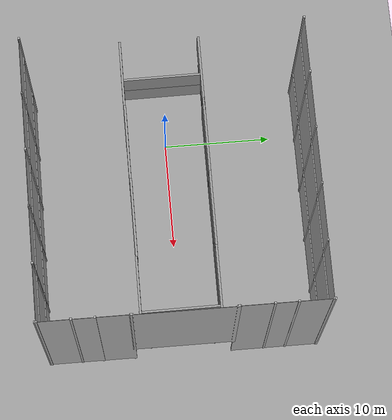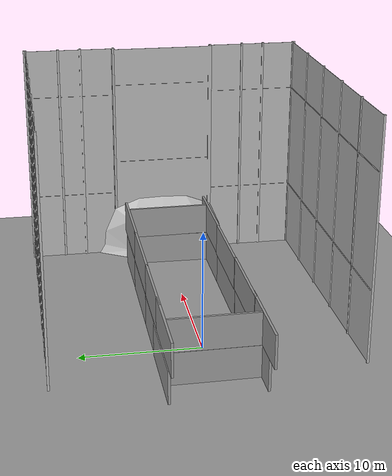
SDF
<sdf version="1.6">
 <world name="default">
  <light name="sun" type="directional">
   <pose>0 0 10 0 -0 0</pose>
   <diffuse>0.8 0.8 0.8 1</diffuse>
   <specular>0.2 0.2 0.2 1</specular>
   <attenuation>
    <range>1000</range>
    <constant>0.9</constant>
    <linear>0.01</linear>
    <quadratic>0.001</quadratic>
   </attenuation>
   <direction>-0.5 0.1 -0.9</direction>
  </light>
  <model name="ground_plane">
   <static>1</static>
   <link name="link">
    <collision name="collision">
     <geometry><plane><normal>0 0 1</normal><size>100 100</size></plane></geometry>
     <surface>
      <contact><collide_bitmask>65535</collide_bitmask></contact>
      <friction><ode><mu>100</mu><mu2>50</mu2></ode></friction>
     </surface>
    </collision>
    <visual name="visual">
     <cast_shadows>0</cast_shadows>
     <geometry><plane><normal>0 0 1</normal><size>100 100</size></plane></geometry>
     <material>
      <script><uri>file://media/materials/scripts/gazebo.material</uri><name>Gazebo/Grey</name></script>
     </material>
    </visual>
   </link>
  </model>
  <gravity>0 0 -9.8</gravity>
  <magnetic_field>6e-06 2.3e-05 -4.2e-05</magnetic_field>
  <atmosphere type="adiabatic"/>
  <physics name="default_physics" default="0" type="ode">
   <max_step_size>0.001</max_step_size>
   <real_time_factor>1</real_time_factor>
   <real_time_update_rate>1000</real_time_update_rate>
  </physics>
  <scene><ambient>0.4 0.4 0.4 1</ambient><background>0.7 0.7 0.7 1</background><shadows>1</shadows></scene>
  <audio><device>default</device></audio>
  <spherical_coordinates>
   <surface_model>EARTH_WGS84</surface_model>
   <latitude_deg>0</latitude_deg>
   <longitude_deg>0</longitude_deg>
   <elevation>0</elevation>
   <heading_deg>0</heading_deg>
  </spherical_coordinates>
  <model name="grey_wall">
   <static>1</static>
   <link name="link">
    <pose>0 0 1.4 0 -0 0</pose>
    <collision name="collision"><geometry><box><size>7.5 0.2 2.8</size></box></geometry></collision>
    <visual name="visual">
     <cast_shadows>0</cast_shadows>
     <geometry><box><size>7.5 0.2 2.8</size></box></geometry>
     <material>
      <script>
       <uri>model://grey_wall/materials/scripts</uri>
       <uri>model://grey_wall/materials/textures</uri>
       <name>vrc/grey_wall</name>
      </script>
     </material>
    </visual>
   </link>
   <pose>1.01817 -3.63173 2.81516 0 -0 0</pose>
  </model>
  <model name="grey_wall_0">
   <static>1</static>
   <link name="link">
    <pose>0 0 1.4 0 -0 0</pose>
    <collision name="collision"><geometry><box><size>7.5 0.2 2.8</size></box></geometry></collision>
    <visual name="visual">
     <cast_shadows>0</cast_shadows>
     <geometry><box><size>7.5 0.2 2.8</size></box></geometry>
     <material>
      <script>
       <uri>model://grey_wall/materials/scripts</uri>
       <uri>model://grey_wall/materials/textures</uri>
       <name>vrc/grey_wall</name>
      </script>
     </material>
    </visual>
   </link>
   <pose>0.863619 3.87178 0 0 -0 0</pose>
  </model>
  <model name="grey_wall_1">
   <static>1</static>
   <link name="link">
    <pose>0 0 1.4 0 -0 0</pose>
    <collision name="collision"><geometry><box><size>7.5 0.2 2.8</size></box></geometry></collision>
    <visual name="visual">
     <cast_shadows>0</cast_shadows>
     <geometry><box><size>7.5 0.2 2.8</size></box></geometry>
     <material>
      <script>
       <uri>model://grey_wall/materials/scripts</uri>
       <uri>model://grey_wall/materials/textures</uri>
       <name>vrc/grey_wall</name>
      </script>
     </material>
    </visual>
   </link>
   <pose>-5.28087 0.121943 0 0 0 -1.56381</pose>
  </model>
  <model name="grey_wall_2">
   <static>1</static>
   <link name="link">
    <pose>0 0 1.4 0 -0 0</pose>
    <collision name="collision"><geometry><box><size>7.5 0.2 2.8</size></box></geometry></collision>
    <visual name="visual">
     <cast_shadows>0</cast_shadows>
     <geometry><box><size>7.5 0.2 2.8</size></box></geometry>
     <material>
      <script>
       <uri>model://grey_wall/materials/scripts</uri>
       <uri>model://grey_wall/materials/textures</uri>
       <name>vrc/grey_wall</name>
      </script>
     </material>
    </visual>
   </link>
   <pose>8.12594 -3.64959 0 0 -0 0</pose>
  </model>
  <model name="grey_wall_3">
   <static>1</static>
   <link name="link">
    <pose>0 0 1.4 0 -0 0</pose>
    <collision name="collision"><geometry><box><size>7.5 0.2 2.8</size></box></geometry></collision>
    <visual name="visual">
     <cast_shadows>0</cast_shadows>
     <geometry><box><size>7.5 0.2 2.8</size></box></geometry>
     <material>
      <script>
       <uri>model://grey_wall/materials/scripts</uri>
       <uri>model://grey_wall/materials/textures</uri>
       <name>vrc/grey_wall</name>
      </script>
     </material>
    </visual>
   </link>
   <pose>8.17557 3.86775 0 0 -0 0</pose>
  </model>
  <model name="grey_wall_4">
   <static>1</static>
   <link name="link">
    <pose>0 0 1.4 0 -0 0</pose>
    <collision name="collision"><geometry><box><size>7.5 0.2 2.8</size></box></geometry></collision>
    <visual name="visual">
     <cast_shadows>0</cast_shadows>
     <geometry><box><size>7.5 0.2 2.8</size></box></geometry>
     <material>
      <script>
       <uri>model://grey_wall/materials/scripts</uri>
       <uri>model://grey_wall/materials/textures</uri>
       <name>vrc/grey_wall</name>
      </script>
     </material>
    </visual>
   </link>
   <pose>13.3251 -3.65072 0 0 -0 0</pose>
  </model>
  <model name="grey_wall_5">
   <static>1</static>
   <link name="link">
    <pose>0 0 1.4 0 -0 0</pose>
    <collision name="collision"><geometry><box><size>7.5 0.2 2.8</size></box></geometry></collision>
    <visual name="visual">
     <cast_shadows>0</cast_shadows>
     <geometry><box><size>7.5 0.2 2.8</size></box></geometry>
     <material>
      <script>
       <uri>model://grey_wall/materials/scripts</uri>
       <uri>model://grey_wall/materials/textures</uri>
       <name>vrc/grey_wall</name>
      </script>
     </material>
    </visual>
   </link>
   <pose>14.1542 3.85196 0 0 -0 0</pose>
  </model>
  <model name="grey_wall_6">
   <static>1</static>
   <link name="link">
    <pose>0 0 1.4 0 -0 0</pose>
    <collision name="collision"><geometry><box><size>7.5 0.2 2.8</size></box></geometry></collision>
    <visual name="visual">
     <cast_shadows>0</cast_shadows>
     <geometry><box><size>7.5 0.2 2.8</size></box></geometry>
     <material>
      <script>
       <uri>model://grey_wall/materials/scripts</uri>
       <uri>model://grey_wall/materials/textures</uri>
       <name>vrc/grey_wall</name>
      </script>
     </material>
    </visual>
   </link>
   <pose>17.3052 0.09085 0 0 0 -1.59084</pose>
  </model>
  <model name="grey_wall_7">
   <static>1</static>
   <link name="link">
    <pose>0 0 1.4 0 -0 0</pose>
    <collision name="collision"><geometry><box><size>7.5 0.2 2.8</size></box></geometry></collision>
    <visual name="visual">
     <cast_shadows>0</cast_shadows>
     <geometry><box><size>7.5 0.2 2.8</size></box></geometry>
     <material>
      <script>
       <uri>model://grey_wall/materials/scripts</uri>
       <uri>model://grey_wall/materials/textures</uri>
       <name>vrc/grey_wall</name>
      </script>
     </material>
    </visual>
   </link>
   <pose>0.932106 -3.66577 0 0 -0 0</pose>
  </model>
  <model name="grey_wall_clone">
   <static>1</static>
   <link name="link">
    <pose>0 0 1.4 0 -0 0</pose>
    <collision name="collision"><geometry><box><size>7.5 0.2 2.8</size></box></geometry></collision>
    <visual name="visual">
     <cast_shadows>0</cast_shadows>
     <geometry><box><size>7.5 0.2 2.8</size></box></geometry>
     <material>
      <script>
       <uri>model://grey_wall/materials/scripts</uri>
       <uri>model://grey_wall/materials/textures</uri>
       <name>vrc/grey_wall</name>
      </script>
     </material>
    </visual>
   </link>
   <pose>8.24846 -3.5942 2.81516 0 -0 0</pose>
  </model>
  <model name="grey_wall_clone_clone">
   <static>1</static>
   <link name="link">
    <pose>0 0 1.4 0 -0 0</pose>
    <collision name="collision"><geometry><box><size>7.5 0.2 2.8</size></box></geometry></collision>
    <visual name="visual">
     <cast_shadows>0</cast_shadows>
     <geometry><box><size>7.5 0.2 2.8</size></box></geometry>
     <material>
      <script>
       <uri>model://grey_wall/materials/scripts</uri>
       <uri>model://grey_wall/materials/textures</uri>
       <name>vrc/grey_wall</name>
      </script>
     </material>
    </visual>
   </link>
   <pose>15.7014 -3.641 2.81516 0 -0 0</pose>
  </model>
  <model name="grey_wall_1_clone">
   <static>1</static>
   <link name="link">
    <pose>0 0 1.4 0 -0 0</pose>
    <collision name="collision"><geometry><box><size>7.5 0.2 2.8</size></box></geometry></collision>
    <visual name="visual">
     <cast_shadows>0</cast_shadows>
     <geometry><box><size>7.5 0.2 2.8</size></box></geometry>
     <material>
      <script>
       <uri>model://grey_wall/materials/scripts</uri>
       <uri>model://grey_wall/materials/textures</uri>
       <name>vrc/grey_wall</name>
      </script>
     </material>
    </visual>
   </link>
   <pose>-5.26746 0.127338 2.78242 0 0 -1.56381</pose>
  </model>
  <model name="grey_wall_clone_0">
   <static>1</static>
   <link name="link">
    <pose>0 0 1.4 0 -0 0</pose>
    <collision name="collision"><geometry><box><size>7.5 0.2 2.8</size></box></geometry></collision>
    <visual name="visual">
     <cast_shadows>0</cast_shadows>
     <geometry><box><size>7.5 0.2 2.8</size></box></geometry>
     <material>
      <script>
       <uri>model://grey_wall/materials/scripts</uri>
       <uri>model://grey_wall/materials/textures</uri>
       <name>vrc/grey_wall</name>
      </script>
     </material>
    </visual>
   </link>
   <pose>0.820876 3.85847 2.81516 0 -0 0</pose>
  </model>
  <model name="grey_wall_clone_1">
   <static>1</static>
   <link name="link">
    <pose>0 0 1.4 0 -0 0</pose>
    <collision name="collision"><geometry><box><size>7.5 0.2 2.8</size></box></geometry></collision>
    <visual name="visual">
     <cast_shadows>0</cast_shadows>
     <geometry><box><size>7.5 0.2 2.8</size></box></geometry>
     <material>
      <script>
       <uri>model://grey_wall/materials/scripts</uri>
       <uri>model://grey_wall/materials/textures</uri>
       <name>vrc/grey_wall</name>
      </script>
     </material>
    </visual>
   </link>
   <pose>8.06011 3.85106 2.81516 0 -0 0</pose>
  </model>
  <model name="grey_wall_clone_2">
   <static>1</static>
   <link name="link">
    <pose>0 0 1.4 0 -0 0</pose>
    <collision name="collision"><geometry><box><size>7.5 0.2 2.8</size></box></geometry></collision>
    <visual name="visual">
     <cast_shadows>0</cast_shadows>
     <geometry><box><size>7.5 0.2 2.8</size></box></geometry>
     <material>
      <script>
       <uri>model://grey_wall/materials/scripts</uri>
       <uri>model://grey_wall/materials/textures</uri>
       <name>vrc/grey_wall</name>
      </script>
     </material>
    </visual>
   </link>
   <pose>15.2353 3.83298 2.81516 0 -0 0</pose>
  </model>
  <model name="grey_wall_1_clone_clone">
   <static>1</static>
   <link name="link">
    <pose>0 0 1.4 0 -0 0</pose>
    <collision name="collision"><geometry><box><size>7.5 0.2 2.8</size></box></geometry></collision>
    <visual name="visual">
     <cast_shadows>0</cast_shadows>
     <geometry><box><size>7.5 0.2 2.8</size></box></geometry>
     <material>
      <script>
       <uri>model://grey_wall/materials/scripts</uri>
       <uri>model://grey_wall/materials/textures</uri>
       <name>vrc/grey_wall</name>
      </script>
     </material>
    </visual>
   </link>
   <pose>17.2716 -0.026044 2.78242 0 0 -1.56381</pose>
  </model>
  <model name="grey_wall_0_clone">
   <static>1</static>
   <link name="link">
    <pose>0 0 1.4 0 -0 0</pose>
    <collision name="collision"><geometry><box><size>7.5 0.2 2.8</size></box></geometry></collision>
    <visual name="visual">
     <cast_shadows>0</cast_shadows>
     <geometry><box><size>7.5 0.2 2.8</size></box></geometry>
     <material>
      <script>
       <uri>model://grey_wall/materials/scripts</uri>
       <uri>model://grey_wall/materials/textures</uri>
       <name>vrc/grey_wall</name>
      </script>
     </material>
    </visual>
   </link>
   <pose>-4.29319 3.94268 0 0 -0 0</pose>
  </model>
  <model name="grey_wall_clone_0_clone">
   <static>1</static>
   <link name="link">
    <pose>0 0 1.4 0 -0 0</pose>
    <collision name="collision"><geometry><box><size>7.5 0.2 2.8</size></box></geometry></collision>
    <visual name="visual">
     <cast_shadows>0</cast_shadows>
     <geometry><box><size>7.5 0.2 2.8</size></box></geometry>
     <material>
      <script>
       <uri>model://grey_wall/materials/scripts</uri>
       <uri>model://grey_wall/materials/textures</uri>
       <name>vrc/grey_wall</name>
      </script>
     </material>
    </visual>
   </link>
   <pose>-5.29631 3.86446 2.81516 0 -0 0</pose>
  </model>
  <model name="grey_wall_7_clone">
   <static>1</static>
   <link name="link">
    <pose>0 0 1.4 0 -0 0</pose>
    <collision name="collision"><geometry><box><size>7.5 0.2 2.8</size></box></geometry></collision>
    <visual name="visual">
     <cast_shadows>0</cast_shadows>
     <geometry><box><size>7.5 0.2 2.8</size></box></geometry>
     <material>
      <script>
       <uri>model://grey_wall/materials/scripts</uri>
       <uri>model://grey_wall/materials/textures</uri>
       <name>vrc/grey_wall</name>
      </script>
     </material>
    </visual>
   </link>
   <pose>-3.71593 -3.69178 0 0 -0 0</pose>
  </model>
  <model name="grey_wall_clone_3">
   <static>1</static>
   <link name="link">
    <pose>0 0 1.4 0 -0 0</pose>
    <collision name="collision"><geometry><box><size>7.5 0.2 2.8</size></box></geometry></collision>
    <visual name="visual">
     <cast_shadows>0</cast_shadows>
     <geometry><box><size>7.5 0.2 2.8</size></box></geometry>
     <material>
      <script>
       <uri>model://grey_wall/materials/scripts</uri>
       <uri>model://grey_wall/materials/textures</uri>
       <name>vrc/grey_wall</name>
      </script>
     </material>
    </visual>
   </link>
   <pose>-5.34574 -3.66884 2.81516 0 -0 0</pose>
  </model>
  <model name="ground_plane_0">
   <static>1</static>
   <link name="link">
    <collision name="collision">
     <geometry><plane><normal>0 0 1</normal><size>100 100</size></plane></geometry>
     <surface>
      <contact><collide_bitmask>65535</collide_bitmask></contact>
      <friction><ode><mu>100</mu><mu2>50</mu2></ode></friction>
     </surface>
    </collision>
    <visual name="visual">
     <cast_shadows>0</cast_shadows>
     <geometry><plane><normal>0 0 1</normal><size>100 100</size></plane></geometry>
     <material>
      <script><uri>file://media/materials/scripts/gazebo.material</uri><name>Gazebo/Grey</name></script>
     </material>
    </visual>
   </link>
   <pose>3.00417 10.6 0 0 -0 0</pose>
  </model>
  <model name="subt_tunnel_staging_area">
   <static>1</static>
   <link name="link">
    <collision name="collision1">
     <pose>-10 -10 20 0 -0 0</pose>
     <geometry><box><size>0.1 0.1 0.1</size></box></geometry>
    </collision>
    <collision name="collision2">
     <pose>10 10 20 0 -0 0</pose>
     <geometry><box><size>0.1 0.1 0.1</size></box></geometry>
    </collision>
    <visual name="plane_visual">
     <pose>-1.18172 0 0 0 -0 0</pose>
     <geometry><mesh><uri>model://subt_tunnel_staging_area/meshes/Asphalt_Plane.DAE</uri></mesh></geometry>
    </visual>
    <visual name="fence_right1">
     <pose>8.81828 -12.4 0 1.5707 -0 0</pose>
     <geometry>
      <mesh><uri>model://subt_tunnel_staging_area/meshes/Fence.dae</uri><scale>1 6.7 1</scale></mesh>
     </geometry>
    </visual>
    <visual name="fence_right2">
     <pose>3.81828 -12.4 0 1.5707 -0 0</pose>
     <geometry>
      <mesh><uri>model://subt_tunnel_staging_area/meshes/Fence.dae</uri><scale>1 6.7 1</scale></mesh>
     </geometry>
    </visual>
    <visual name="fence_right3">
     <pose>-1.18172 -12.4 0 1.5707 -0 0</pose>
     <geometry>
      <mesh><uri>model://subt_tunnel_staging_area/meshes/Fence.dae</uri><scale>1 6.7 1</scale></mesh>
     </geometry>
    </visual>
    <visual name="fence_right4">
     <pose>-6.18172 -12.4 0 1.5707 -0 0</pose>
     <geometry>
      <mesh><uri>model://subt_tunnel_staging_area/meshes/Fence.dae</uri><scale>1 6.7 1</scale></mesh>
     </geometry>
    </visual>
    <visual name="fence_right5">
     <pose>-11.1817 -12.4 0 1.5707 -0 0</pose>
     <geometry>
      <mesh><uri>model://subt_tunnel_staging_area/meshes/Fence.dae</uri><scale>1 6.7 1</scale></mesh>
     </geometry>
    </visual>
    <visual name="fence_left1">
     <pose>8.81828 12.4 0 1.5707 -0 3.1415</pose>
     <geometry>
      <mesh><uri>model://subt_tunnel_staging_area/meshes/Fence.dae</uri><scale>1 6.7 1</scale></mesh>
     </geometry>
    </visual>
    <visual name="fence_left2">
     <pose>3.81828 12.4 0 1.5707 -0 3.1415</pose>
     <geometry>
      <mesh><uri>model://subt_tunnel_staging_area/meshes/Fence.dae</uri><scale>1 6.7 1</scale></mesh>
     </geometry>
    </visual>
    <visual name="fence_left3">
     <pose>-1.18172 12.4 0 1.5707 -0 3.1415</pose>
     <geometry>
      <mesh><uri>model://subt_tunnel_staging_area/meshes/Fence.dae</uri><scale>1 6.7 1</scale></mesh>
     </geometry>
    </visual>
    <visual name="fence_left4">
     <pose>-6.18172 12.4 0 1.5707 -0 3.1415</pose>
     <geometry>
      <mesh><uri>model://subt_tunnel_staging_area/meshes/Fence.dae</uri><scale>1 6.7 1</scale></mesh>
     </geometry>
    </visual>
    <visual name="fence_left5">
     <pose>-11.1817 12.4 0 1.5707 -0 3.1415</pose>
     <geometry>
      <mesh><uri>model://subt_tunnel_staging_area/meshes/Fence.dae</uri><scale>1 6.7 1</scale></mesh>
     </geometry>
    </visual>
    <visual name="fence_front_left1">
     <pose>11.3182 10 0 1.5707 0 1.5707</pose>
     <geometry>
      <mesh><uri>model://subt_tunnel_staging_area/meshes/Fence.dae</uri><scale>1 6.7 1</scale></mesh>
     </geometry>
    </visual>
    <visual name="fence_front_left2">
     <pose>11.3182 7 0 1.5707 0 1.5707</pose>
     <geometry>
      <mesh><uri>model://subt_tunnel_staging_area/meshes/Fence.dae</uri><scale>1 6.7 1</scale></mesh>
     </geometry>
    </visual>
    <visual name="fence_front_right1">
     <pose>11.3182 -10 0 1.5707 0 1.5707</pose>
     <geometry>
      <mesh><uri>model://subt_tunnel_staging_area/meshes/Fence.dae</uri><scale>1 6.7 1</scale></mesh>
     </geometry>
    </visual>
    <visual name="fence_front_right2">
     <pose>11.3182 -7 0 1.5707 0 1.5707</pose>
     <geometry>
      <mesh><uri>model://subt_tunnel_staging_area/meshes/Fence.dae</uri><scale>1 6.7 1</scale></mesh>
     </geometry>
    </visual>
    <visual name="fence_front_top">
     <pose>11.3182 0 4.5 1.5707 0 1.5707</pose>
     <geometry>
      <mesh><uri>model://subt_tunnel_staging_area/meshes/Fence.dae</uri><scale>1.8 5.17 1</scale></mesh>
     </geometry>
    </visual>
    <collision name="ceiling_collision">
     <pose>-1.18172 0 20.5 0 -0 0</pose>
     <geometry><box><size>25 25 1</size></box></geometry>
    </collision>
    <collision name="right_collision">
     <pose>-1.18172 -13 10.5 0 -0 0</pose>
     <geometry><box><size>25 1 21</size></box></geometry>
    </collision>
    <collision name="left_collision">
     <pose>-1.18172 13 10.5 0 -0 0</pose>
     <geometry><box><size>25 1 21</size></box></geometry>
    </collision>
    <collision name="rear_collision">
     <pose>-13.6182 0 10.5 0 -0 0</pose>
     <geometry><box><size>1 25 21</size></box></geometry>
    </collision>
    <collision name="front_left_collision">
     <pose>11.3182 8.75 10.5 0 -0 0</pose>
     <geometry><box><size>1 9.5 21</size></box></geometry>
    </collision>
    <collision name="front_right_collision">
     <pose>11.3182 -8.75 10.5 0 -0 0</pose>
     <geometry><box><size>1 9.5 21</size></box></geometry>
    </collision>
    <collision name="front_top_collision">
     <pose>11.3182 0 12.5 0 -0 0</pose>
     <geometry><box><size>1 8 15</size></box></geometry>
    </collision>
    <collision name="plane_collision">
     <pose>-1.18172 0 -0.502 0 -0 0</pose>
     <geometry><box><size>25 25 1</size></box></geometry>
    </collision>
    <collision name="collision">
     <pose>10 0 -0.001 0 0 -1.5708</pose>
     <geometry>
      <mesh><scale>0.93 0.93 0.93</scale><uri>model://subt_tunnel_staging_area/meshes/Entrance.dae</uri></mesh>
     </geometry>
    </collision>
    <visual name="visual">
     <pose>10 0 -0.001 0 0 -1.5708</pose>
     <geometry>
      <mesh><scale>0.93 0.93 0.93</scale><uri>model://subt_tunnel_staging_area/meshes/Entrance.dae</uri></mesh>
     </geometry>
    </visual>
   </link>
   <pose>9.10018 0.125742 0 0 -0 0</pose>
  </model>
 </world>
</sdf>
